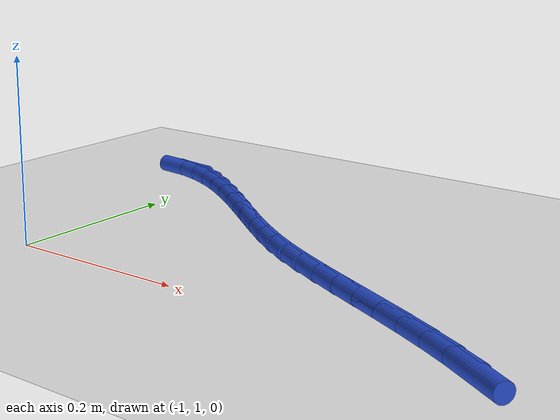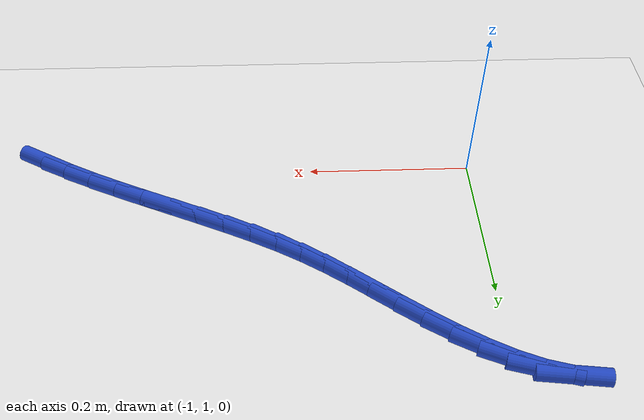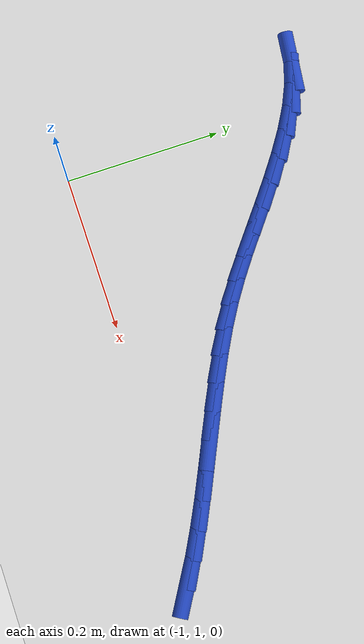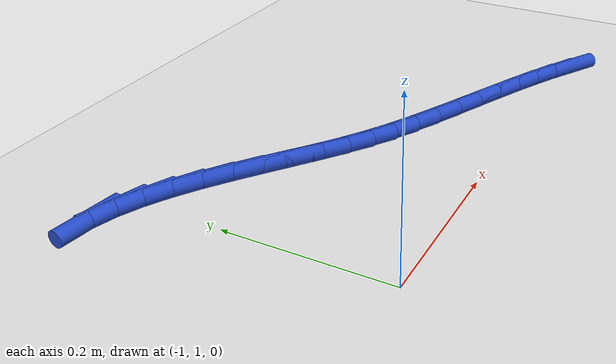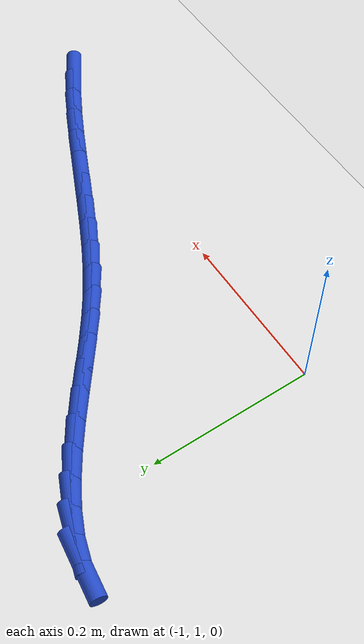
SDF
<sdf version="1.6">
 <world name="default">
  <model name="ground_plane">
   <static>1</static>
   <link name="link">
    <collision name="collision">
     <geometry><plane><normal>0 0 1</normal><size>100 100</size></plane></geometry>
     <surface><friction><ode><mu>100</mu><mu2>50</mu2></ode></friction></surface>
    </collision>
    <visual name="visual">
     <cast_shadows>0</cast_shadows>
     <geometry><plane><normal>0 0 1</normal><size>100 100</size></plane></geometry>
     <material>
      <script><uri>file://media/materials/scripts/gazebo.material</uri><name>Gazebo/WhiteGlow</name></script>
     </material>
    </visual>
   </link>
  </model>
  <model name="line">
   <link name="link_39">
    <pose>-0.4684257245713378 0.9833072420773088 0.01 0 1.57 -0.5386540889914756</pose>
    <collision name="collision">
     <geometry><cylinder><radius>0.01</radius><length>0.08</length></cylinder></geometry>
    </collision>
    <visual name="visual">
     <material>
      <script><name>Gazebo/Blue</name><uri>file://media/materials/scripts/gazebo.material</uri></script>
     </material>
     <geometry><cylinder><radius>0.01</radius><length>0.08</length></cylinder></geometry>
    </visual>
   </link>
   <link name="link_40">
    <pose>-0.4981591305959136 1.0010759724573883 0.01 0 1.57 -0.49644651626106195</pose>
    <collision name="collision">
     <geometry><cylinder><radius>0.01</radius><length>0.08</length></cylinder></geometry>
    </collision>
    <visual name="visual">
     <material>
      <script><name>Gazebo/Blue</name><uri>file://media/materials/scripts/gazebo.material</uri></script>
     </material>
     <geometry><cylinder><radius>0.01</radius><length>0.08</length></cylinder></geometry>
    </visual>
   </link>
   <link name="link_41">
    <pose>-0.5295658337256136 1.0180889019483355 0.01 0 1.57 -0.4664395828567263</pose>
    <collision name="collision">
     <geometry><cylinder><radius>0.01</radius><length>0.08</length></cylinder></geometry>
    </collision>
    <visual name="visual">
     <material>
      <script><name>Gazebo/Blue</name><uri>file://media/materials/scripts/gazebo.material</uri></script>
     </material>
     <geometry><cylinder><radius>0.01</radius><length>0.08</length></cylinder></geometry>
    </visual>
   </link>
   <link name="link_42">
    <pose>-0.562179176406191 1.0345095521979994 0.01 0 1.57 -0.4470884998388332</pose>
    <collision name="collision">
     <geometry><cylinder><radius>0.01</radius><length>0.08</length></cylinder></geometry>
    </collision>
    <visual name="visual">
     <material>
      <script><name>Gazebo/Blue</name><uri>file://media/materials/scripts/gazebo.material</uri></script>
     </material>
     <geometry><cylinder><radius>0.01</radius><length>0.08</length></cylinder></geometry>
    </visual>
   </link>
   <link name="link_43">
    <pose>-0.5955325010833996 1.0505014448542305 0.01 0 1.57 -0.43746250256236646</pose>
    <collision name="collision">
     <geometry><cylinder><radius>0.01</radius><length>0.08</length></cylinder></geometry>
    </collision>
    <visual name="visual">
     <material>
      <script><name>Gazebo/Blue</name><uri>file://media/materials/scripts/gazebo.material</uri></script>
     </material>
     <geometry><cylinder><radius>0.01</radius><length>0.08</length></cylinder></geometry>
    </visual>
   </link>
   <link name="link_44">
    <pose>-0.6291591502029924 1.0662281015648778 0.01 0 1.57 -0.43718525185235146</pose>
    <collision name="collision">
     <geometry><cylinder><radius>0.01</radius><length>0.08</length></cylinder></geometry>
    </collision>
    <visual name="visual">
     <material>
      <script><name>Gazebo/Blue</name><uri>file://media/materials/scripts/gazebo.material</uri></script>
     </material>
     <geometry><cylinder><radius>0.01</radius><length>0.08</length></cylinder></geometry>
    </visual>
   </link>
   <link name="link_45">
    <pose>-0.6625924662107235 1.0818530439777918 0.01 0 1.57 -0.4464171683865246</pose>
    <collision name="collision">
     <geometry><cylinder><radius>0.01</radius><length>0.08</length></cylinder></geometry>
    </collision>
    <visual name="visual">
     <material>
      <script><name>Gazebo/Blue</name><uri>file://media/materials/scripts/gazebo.material</uri></script>
     </material>
     <geometry><cylinder><radius>0.01</radius><length>0.08</length></cylinder></geometry>
    </visual>
   </link>
   <link name="link_46">
    <pose>-0.6953657915523462 1.097539793740822 0.01 0 1.57 -0.46588836568821995</pose>
    <collision name="collision">
     <geometry><cylinder><radius>0.01</radius><length>0.08</length></cylinder></geometry>
    </collision>
    <visual name="visual">
     <material>
      <script><name>Gazebo/Blue</name><uri>file://media/materials/scripts/gazebo.material</uri></script>
     </material>
     <geometry><cylinder><radius>0.01</radius><length>0.08</length></cylinder></geometry>
    </visual>
   </link>
   <link name="link_47">
    <pose>-0.7270124686736137 1.113451872501818 0.01 0 1.57 -0.4969890652003907</pose>
    <collision name="collision">
     <geometry><cylinder><radius>0.01</radius><length>0.08</length></cylinder></geometry>
    </collision>
    <visual name="visual">
     <material>
      <script><name>Gazebo/Blue</name><uri>file://media/materials/scripts/gazebo.material</uri></script>
     </material>
     <geometry><cylinder><radius>0.01</radius><length>0.08</length></cylinder></geometry>
    </visual>
   </link>
   <link name="link_48">
    <pose>-0.7570658400202797 1.12975280190863 0.01 0 1.57 -0.5416075769836707</pose>
    <collision name="collision">
     <geometry><cylinder><radius>0.01</radius><length>0.08</length></cylinder></geometry>
    </collision>
    <visual name="visual">
     <material>
      <script><name>Gazebo/Blue</name><uri>file://media/materials/scripts/gazebo.material</uri></script>
     </material>
     <geometry><cylinder><radius>0.01</radius><length>0.08</length></cylinder></geometry>
    </visual>
   </link>
   <link name="link_49">
    <pose>-0.7850832771548926 1.1466085666402683 0.01 0 1.57 -0.5915583991998784</pose>
    <collision name="collision">
     <geometry><cylinder><radius>0.01</radius><length>0.08</length></cylinder></geometry>
    </collision>
    <visual name="visual">
     <material>
      <script><name>Gazebo/Blue</name><uri>file://media/materials/scripts/gazebo.material</uri></script>
     </material>
     <geometry><cylinder><radius>0.01</radius><length>0.08</length></cylinder></geometry>
    </visual>
   </link>
   <link name="link_50">
    <pose>-0.811358450700799 1.1642606234601167 0.01 0 1.57 -0.6313274630269666</pose>
    <collision name="collision">
     <geometry><cylinder><radius>0.01</radius><length>0.08</length></cylinder></geometry>
    </collision>
    <visual name="visual">
     <material>
      <script><name>Gazebo/Blue</name><uri>file://media/materials/scripts/gazebo.material</uri></script>
     </material>
     <geometry><cylinder><radius>0.01</radius><length>0.08</length></cylinder></geometry>
    </visual>
   </link>
   <link name="link_51">
    <pose>-0.8370406054537128 1.1830381271466242 0.01 0 1.57 -0.6558054911247395</pose>
    <collision name="collision">
     <geometry><cylinder><radius>0.01</radius><length>0.08</length></cylinder></geometry>
    </collision>
    <visual name="visual">
     <material>
      <script><name>Gazebo/Blue</name><uri>file://media/materials/scripts/gazebo.material</uri></script>
     </material>
     <geometry><cylinder><radius>0.01</radius><length>0.08</length></cylinder></geometry>
    </visual>
   </link>
   <link name="link_52">
    <pose>-0.86319304337328 1.2031599608446233 0.01 0 1.57 -0.6629031661865104</pose>
    <collision name="collision">
     <geometry><cylinder><radius>0.01</radius><length>0.08</length></cylinder></geometry>
    </collision>
    <visual name="visual">
     <material>
      <script><name>Gazebo/Blue</name><uri>file://media/materials/scripts/gazebo.material</uri></script>
     </material>
     <geometry><cylinder><radius>0.01</radius><length>0.08</length></cylinder></geometry>
    </visual>
   </link>
   <link name="link_53">
    <pose>-0.8900087199813189 1.2240967639176559 0.01 0 1.57 -0.6535054408481771</pose>
    <collision name="collision">
     <geometry><cylinder><radius>0.01</radius><length>0.08</length></cylinder></geometry>
    </collision>
    <visual name="visual">
     <material>
      <script><name>Gazebo/Blue</name><uri>file://media/materials/scripts/gazebo.material</uri></script>
     </material>
     <geometry><cylinder><radius>0.01</radius><length>0.08</length></cylinder></geometry>
    </visual>
   </link>
   <link name="link_54">
    <pose>-0.917332948392003 1.245020304775895 0.01 0 1.57 -0.6276705999102542</pose>
    <collision name="collision">
     <geometry><cylinder><radius>0.01</radius><length>0.08</length></cylinder></geometry>
    </collision>
    <visual name="visual">
     <material>
      <script><name>Gazebo/Blue</name><uri>file://media/materials/scripts/gazebo.material</uri></script>
     </material>
     <geometry><cylinder><radius>0.01</radius><length>0.08</length></cylinder></geometry>
    </visual>
   </link>
   <link name="link_55">
    <pose>-0.945010130816856 1.265101568719234 0.01 0 1.57 -0.5836922269840704</pose>
    <collision name="collision">
     <geometry><cylinder><radius>0.01</radius><length>0.08</length></cylinder></geometry>
    </collision>
    <visual name="visual">
     <material>
      <script><name>Gazebo/Blue</name><uri>file://media/materials/scripts/gazebo.material</uri></script>
     </material>
     <geometry><cylinder><radius>0.01</radius><length>0.08</length></cylinder></geometry>
    </visual>
   </link>
   <link name="link_56">
    <pose>-0.9728846694674023 1.2835115410475668 0.01 0 1.57 -0.5179975986065161</pose>
    <collision name="collision">
     <geometry><cylinder><radius>0.01</radius><length>0.08</length></cylinder></geometry>
    </collision>
    <visual name="visual">
     <material>
      <script><name>Gazebo/Blue</name><uri>file://media/materials/scripts/gazebo.material</uri></script>
     </material>
     <geometry><cylinder><radius>0.01</radius><length>0.08</length></cylinder></geometry>
    </visual>
   </link>
   <link name="link_57">
    <pose>-1.0008009665551656 1.2994212070607873 0.01 0 1.57 -0.42492300689233686</pose>
    <collision name="collision">
     <geometry><cylinder><radius>0.01</radius><length>0.08</length></cylinder></geometry>
    </collision>
    <visual name="visual">
     <material>
      <script><name>Gazebo/Blue</name><uri>file://media/materials/scripts/gazebo.material</uri></script>
     </material>
     <geometry><cylinder><radius>0.01</radius><length>0.08</length></cylinder></geometry>
    </visual>
   </link>
   <link name="link_58">
    <pose>-1.0286034242916702 1.312001552058789 0.01 0 1.57 -0.29684946125277933</pose>
    <collision name="collision">
     <geometry><cylinder><radius>0.01</radius><length>0.08</length></cylinder></geometry>
    </collision>
    <visual name="visual">
     <material>
      <script><name>Gazebo/Blue</name><uri>file://media/materials/scripts/gazebo.material</uri></script>
     </material>
     <geometry><cylinder><radius>0.01</radius><length>0.08</length></cylinder></geometry>
    </visual>
   </link>
   <link name="link_59">
    <pose>-1.0561364448884396 1.3204235613414648 0.01 0 1.57 -0.12661109981821145</pose>
    <collision name="collision">
     <geometry><cylinder><radius>0.01</radius><length>0.08</length></cylinder></geometry>
    </collision>
    <visual name="visual">
     <material>
      <script><name>Gazebo/Blue</name><uri>file://media/materials/scripts/gazebo.material</uri></script>
     </material>
     <geometry><cylinder><radius>0.01</radius><length>0.08</length></cylinder></geometry>
    </visual>
   </link>
  </model>
 </world>
</sdf>
